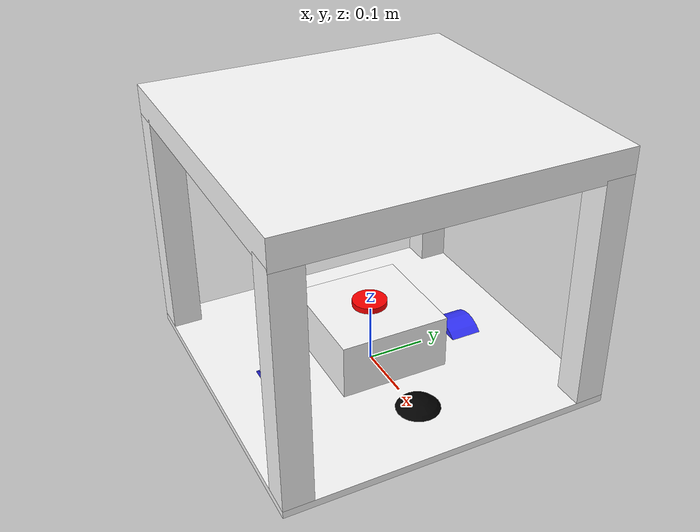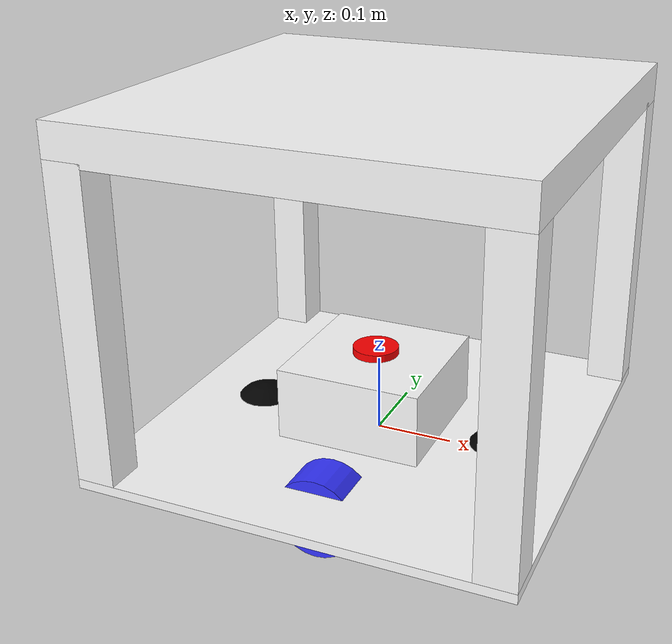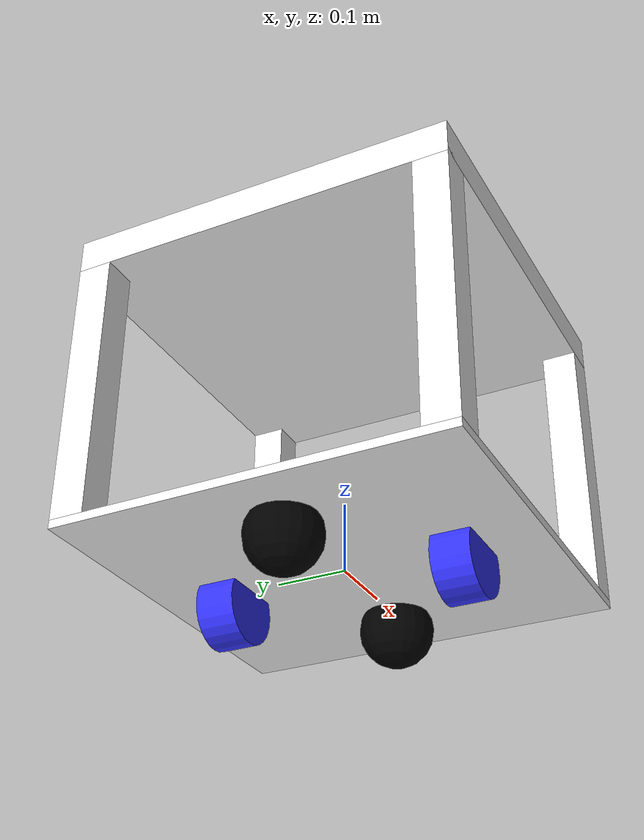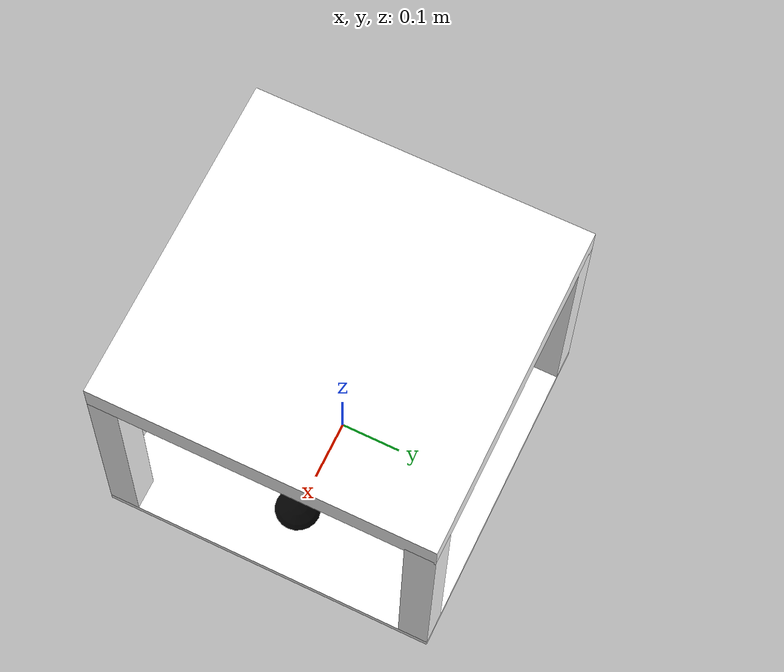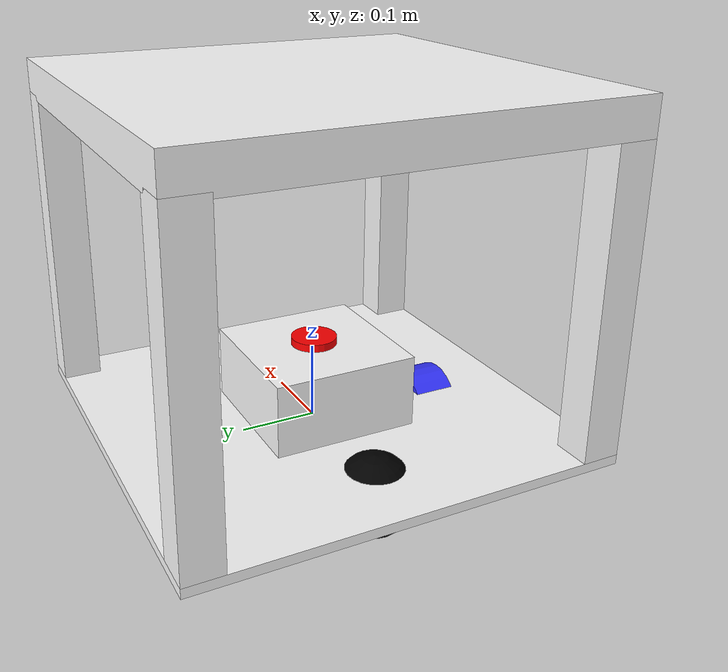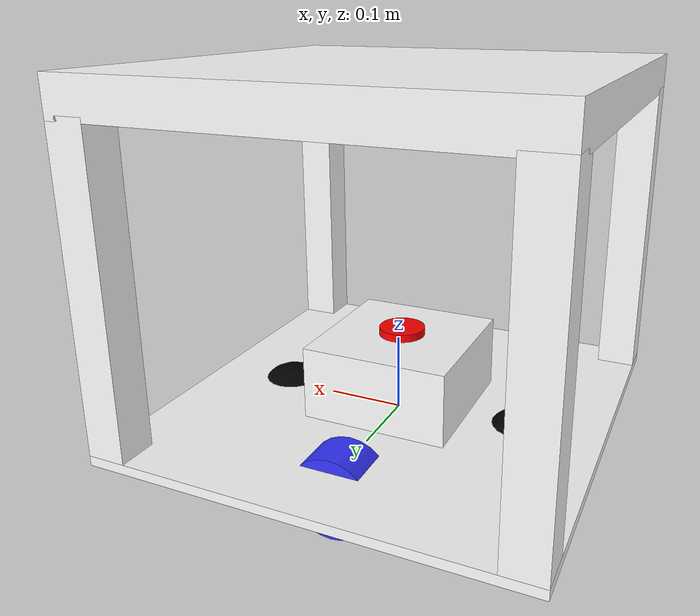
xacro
<?xml version="1.0"?>
<robot xmlns:xacro="http://www.ros.org/wiki/xacro" name="robot">

    <xacro:arg name="use_ros2_control" default="true"/>
    <xacro:arg name="sim_mode" default="false"/>

    <xacro:include filename="robot_core.xacro" />

    <xacro:if value="$(arg use_ros2_control)">
        <xacro:include filename="ros2_control.xacro" />
    </xacro:if>

    <xacro:unless value="$(arg use_ros2_control)">
        <xacro:include filename="gazebo_control.xacro"/>
    </xacro:unless>

    <xacro:include filename="lidar.xacro" />

</robot>

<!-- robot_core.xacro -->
<robot xmlns:xacro="http://www.ros.org/wiki/xacro"  >
<xacro:include filename="inertial_macros.xacro" />

    <material name="white">
        <color rgba="1 1 1 1" />
    </material>

    <material name="orange">
        <color rgba="1 0.3 0.1 1" />
    </material>

    <material name="blue">
        <color rgba="0.2 0.2 1 1" />
    </material>

    <material name="black">
        <color rgba="0 0 0 1" />
    </material>

    <material name="red">
        <color rgba="1 0 0 1" />
    </material>

    <!-- BASE LINK -->

    <link name="base_link" >

    </link>

    <!-- BASE FOOTPRINT LINK -->

    <joint name="base_footprint_joint" type="fixed">
        <parent link="base_link" />
        <child link="base_footprint" />
        <origin xyz="0 0 0" rpy="0 0 0"/>
    </joint>

    <link name="base_footprint"></link>

    <!-- CHASSIS LINK -->

    <joint name="chassis_joint" type="fixed">
        <parent link="base_link"/>
        <child link="chassis"/>
        <origin xyz="-0.275 0 0"/>
    </joint>

    <link name="chassis">
        <visual>
        <origin xyz="0.275 0 0.00625"/>
            <geometry>
                <box size="0.55 0.56 0.0125"/>
            </geometry>
            <material name="white" />
        </visual>
        <collision>
        <origin xyz="0.275 0 0.00625"/>
            <geometry>
                <box size="0.16 0.16 0.0125"/>
            </geometry>
        </collision>
        <xacro:inertial_box mass="0.5" x="0.55" y="0.56" z="0.0125">
            <origin xyz="0.275 0 0.00625" rpy="0 0 0"/>
        </xacro:inertial_box>
    </link>

    <gazebo reference="chassis">
        <material>Gazebo/Orange</material>
    </gazebo>

    <!-- LEFT WHEEL LINK-->
    <joint name="left_wheel_joint" type="continuous">
        <parent link="base_link"/>
        <child link="left_wheel"/>
        <origin xyz="0 0.17 -0.02375" rpy="-${pi/2} 0 0"/>
        <axis xyz="0 0 1"/>
    </joint>

    <link name="left_wheel">
        <visual>
            <geometry>
                <cylinder radius="0.0525" length="0.055"/>
            </geometry>
            <material name="blue"/>
        </visual>
        <collision>
            <geometry>
                <cylinder radius="0.0525" length="0.055"/>
            </geometry>
        </collision>
        <xacro:inertial_cylinder mass="0.1" length="0.055" radius="0.0525">
            <origin xyz="0 0 0" rpy="0 0 0"/>
        </xacro:inertial_cylinder>
    </link>

    <gazebo reference="left_wheel">
        <material>Gazebo/Blue</material>
    </gazebo>

    <!-- RIGHT WHEEL LINK-->
    <joint name="right_wheel_joint" type="continuous">
        <parent link="base_link"/>
        <child link="right_wheel"/>
        <origin xyz="0 -0.17 -0.02375" rpy="${pi/2} 0 0"/>
        <axis xyz="0 0 -1"/>
    </joint>

    <link name="right_wheel">
        <visual>
            <geometry>
                <cylinder radius="0.0525" length="0.055"/>
            </geometry>
            <material name="blue"/>
        </visual>
        <collision>
            <geometry>
                <cylinder radius="0.0525" length="0.055"/>
            </geometry>
        </collision>
        <xacro:inertial_cylinder mass="0.1" radius="0.0525" length="0.055">
            <origin xyz="0 0 0" rpy="0 0 0"/>
        </xacro:inertial_cylinder>
    </link>

    <gazebo reference="right_wheel">
        <material>Gazebo/Blue</material>
    </gazebo>

    <!-- CASTER WHEEL TOP-->

    <joint name="caster_wheel_top_joint" type="fixed">
        <parent link="chassis"/>
        <child link="caster_wheel_top"/>
        <origin xyz="0.44 0 -0.02375"/>
    </joint>

    <link name="caster_wheel_top">
        <visual>
            <geometry>
                <sphere radius="0.0525"/>
            </geometry>
            <material name="black"/>
        </visual>
        <collision>
            <geometry>
                <sphere radius="0.0525"/>
            </geometry>
        </collision>
        <xacro:inertial_sphere mass="0.1" radius="0.0525">
            <origin xyz="0 0 0" rpy="0 0 0"/>
        </xacro:inertial_sphere>
    </link>

    <gazebo reference="caster_wheel_top">
        <material>Gazebo/White</material>
        <mu1 value="0.001"/>
        <mu2 value="0.001"/>
    </gazebo>

        <!-- CASTER WHEEL BOTTOM-->

    <joint name="caster_wheel_bottom_joint" type="fixed">
        <parent link="chassis"/>
        <child link="caster_wheel_bottom"/>
        <origin xyz="0.105 0 -0.02375"/>
    </joint>

    <link name="caster_wheel_bottom">
        <visual>
            <geometry>
                <sphere radius="0.0525"/>
            </geometry>
            <material name="black"/>
        </visual>
        <collision>
            <geometry>
                <sphere radius="0.0525"/>
            </geometry>
        </collision>
        <xacro:inertial_sphere mass="0.1" radius="0.0525">
            <origin xyz="0 0 0" rpy="0 0 0"/>
        </xacro:inertial_sphere>
    </link>

    <gazebo reference="caster_wheel_bottom">
        <material>Gazebo/White</material>
        <mu1 value="0.001"/>
        <mu2 value="0.001"/>
    </gazebo>

        <!--   PROJECT BOX -->

    <joint name="project_box_joint" type="fixed">
        <parent link="chassis"/>
        <child link="project_box"/>
        <origin xyz="0.27 0 0.06"/>
    </joint>

    <link name="project_box">
        <visual>
            <geometry>
                <box size="0.19 0.19 0.095"/>
            </geometry>
            <material name="white"/>
        </visual>
        <collision>
            <geometry>
                <box size="0.19 0.19 0.095"/>
            </geometry>
        </collision>
        <xacro:inertial_box mass="0.5" x="0.19" y="0.19" z="0.095">
            <origin xyz="0 0 0" rpy="0 0 0"/>
        </xacro:inertial_box>
    </link>

    <gazebo reference="project_box">
        <material>Gazebo/Orange</material>
    </gazebo>

            <!--   LEG 1 -->

    <joint name="leg1_joint" type="fixed">
        <parent link="chassis"/>
        <child link="leg1"/>
        <origin xyz="0.525 -0.255 0.2125"/>
    </joint>

    <link name="leg1">
        <visual>
            <geometry>
                <box size="0.05 0.05 0.4"/>
            </geometry>
            <material name="white"/>
        </visual>
        <collision>
            <geometry>
                <box size="0.05 0.05 0.4"/>
            </geometry>
        </collision>
        <xacro:inertial_box mass="0.5" x="0.05" y="0.05" z="0.4">
            <origin xyz="0 0 0" rpy="0 0 0"/>
        </xacro:inertial_box>
    </link>

    <gazebo reference="leg1">
        <material>Gazebo/Orange</material>
    </gazebo>

                 <!--   LEG 2 -->

    <joint name="leg2_joint" type="fixed">
        <parent link="chassis"/>
        <child link="leg2"/>
        <origin xyz="0.525 0.255 0.2125"/>
    </joint>

    <link name="leg2">
        <visual>
            <geometry>
                <box size="0.05 0.05 0.4"/>
            </geometry>
            <material name="white"/>
        </visual>
        <collision>
            <geometry>
                <box size="0.05 0.05 0.4"/>
            </geometry>
        </collision>
        <xacro:inertial_box mass="0.5" x="0.05" y="0.05" z="0.4">
            <origin xyz="0 0 0" rpy="0 0 0"/>
        </xacro:inertial_box>
    </link>

    <gazebo reference="leg2">
        <material>Gazebo/Orange</material>
    </gazebo>

             <!--   LEG 3 -->

    <joint name="leg3_joint" type="fixed">
        <parent link="chassis"/>
        <child link="leg3"/>
        <origin xyz="0.025 -0.255 0.2125"/>
    </joint>

    <link name="leg3">
        <visual>
            <geometry>
                <box size="0.05 0.05 0.4"/>
            </geometry>
            <material name="white"/>
        </visual>
        <collision>
            <geometry>
                <box size="0.05 0.05 0.4"/>
            </geometry>
        </collision>
        <xacro:inertial_box mass="0.5" x="0.05" y="0.05" z="0.4">
            <origin xyz="0 0 0" rpy="0 0 0"/>
        </xacro:inertial_box>
    </link>

    <gazebo reference="leg3">
        <material>Gazebo/Orange</material>
    </gazebo>

                 <!--   LEG 4 -->

    <joint name="leg4_joint" type="fixed">
        <parent link="chassis"/>
        <child link="leg4"/>
        <origin xyz="0.025 0.255 0.2125"/>
    </joint>

    <link name="leg4">
        <visual>
            <geometry>
                <box size="0.05 0.05 0.4"/>
            </geometry>
            <material name="white"/>
        </visual>
        <collision>
            <geometry>
                <box size="0.05 0.05 0.4"/>
            </geometry>
        </collision>
        <xacro:inertial_box mass="0.5" x="0.05" y="0.05" z="0.4">
            <origin xyz="0 0 0" rpy="0 0 0"/>
        </xacro:inertial_box>
    </link>

    <gazebo reference="leg4">
        <material>Gazebo/Orange</material>
    </gazebo>

                 <!--   TABLE TOP -->

    <joint name="table_top_joint" type="fixed">
        <parent link="chassis"/>
        <child link="table_top"/>
        <origin xyz="0.275 0 0.43125"/>
    </joint>

    <link name="table_top">
        <visual>
            <geometry>
                <box size="0.55 0.56 0.05"/>
            </geometry>
            <material name="white"/>
        </visual>
        <collision>
            <geometry>
                <box size="0.55 0.56 0.05"/>
            </geometry>
        </collision>
        <xacro:inertial_box mass="0.5" x="0.55" y="0.56" z="0.05">
            <origin xyz="0 0 0  " rpy="0 0 0"/>
        </xacro:inertial_box>
    </link>

    <gazebo reference="table_top">
        <material>Gazebo/Orange</material>
    </gazebo>

</robot>

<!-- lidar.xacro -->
<robot xmlns:xacro="http://www.ros.org/wiki/xacro" >

    <joint name="laser_joint" type="fixed">
        <parent link="chassis"/>
        <child link="laser_frame"/>
        <origin xyz="0.27 0 0.1075" rpy="0 0 0"/>
    </joint>

    <link name="laser_frame">
        <visual>
            <geometry>
                <cylinder radius="0.03" length="0.02"/>
            </geometry>
            <material name="red"/>
        </visual>
        <collision>
            <geometry>
                <cylinder radius="0.03" length="0.015"/>
            </geometry>
        </collision>
        <xacro:inertial_cylinder mass="0.1" radius="0.03" length="0.015">
            <origin xyz="0 0 0" rpy="0 0 0"/>
        </xacro:inertial_cylinder>
    </link>

    <gazebo reference="laser_frame">
        <material>Gazebo/Red</material>
        <sensor name="laser" type="gpu_lidar">
            <pose> 0 0 0 0 0 0 </pose>
            <visualize>true</visualize>
            <update_rate>10</update_rate>
            <lidar>
                <scan>
                    <horizontal>
                        <samples>360</samples>
                        <resolution>1</resolution>
                        <min_angle>-3.14</min_angle>
                        <max_angle>3.14</max_angle>
                    </horizontal>
                </scan>
                <range>
                    <min>0.6</min>
                    <max>8</max>
                    <resolution>0.01</resolution>
                </range>
            </lidar>

            <topic>scan</topic>
            <gz_frame_id>laser_frame</gz_frame_id>

        </sensor>
    </gazebo>

</robot>
